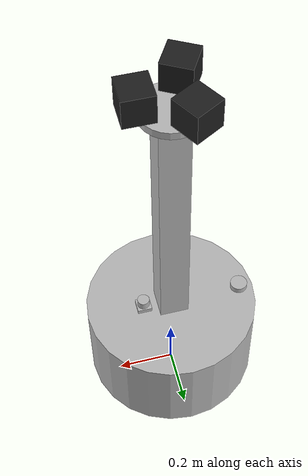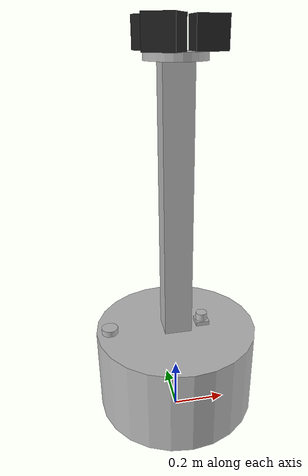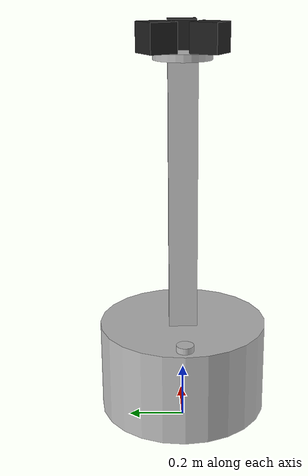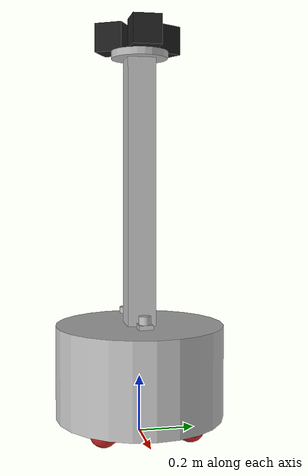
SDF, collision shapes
<?xml version='1.0' ?>
<sdf version='1.4'>
  <model name='Doris'>
	<static>true</static>
	 <link name='cuerpo'>
          <pose> 0 0 0.222 0 0 0 </pose>
            <collision name='cuerpo_collision'>
              <geometry>
                <cylinder>
                  <radius>.30</radius>
                  <length>.33</length>
                </cylinder>
              </geometry>
              <surface>
 		<friction>
 			<ode>
 			<mu>0</mu>
 			<mu2>0</mu2>
 			<slip1>1.0</slip1>
 			<slip2>1.0</slip2>
 			</ode>
 		</friction>
	     </surface>
            </collision>
            <visual name='cuerpo_visual'>
              <geometry>
                <cylinder>
                 <radius>.30</radius>
                 <length>.33</length>
                </cylinder>
              </geometry>
            </visual>
          </link>
	   <link name="left_wheel">
             <pose>0 0.15 0.05 0 1.5707 1.5707</pose>
              <collision name="collision">
               <geometry>
                <cylinder>
                 <radius>.05</radius>
                 <length>.05</length>
                </cylinder>
               </geometry>
              </collision>
              <visual name="visual">
               <geometry>
                <cylinder>
                 <radius>.05</radius>
                  <length>.05</length>
                </cylinder>
               </geometry>
              </visual>
           </link>
           <link name="right_wheel">
        <pose>0 -0.15 0.05 0 1.5707 1.5707</pose>
        <collision name="collisionr">
          <geometry>
            <cylinder>
              <radius>.05</radius>
              <length>.05</length>
            </cylinder>
          </geometry>
        </collision>
        <visual name="visualr">
          <geometry>
            <cylinder>
              <radius>.05</radius>
              <length>.05</length>
            </cylinder>
          </geometry>
        </visual>
      </link>

     <link name="mastil">
          <pose> 0 0 0.85 0 0 0 </pose>
          <collision name='mastil_collision'>
              <geometry>
                <box>
                  <size> 0.1 0.1 0.95</size>
                </box>
              </geometry>
          </collision>
          <visual name="mastil_visual">
              <geometry>
                <box>
                  <size> 0.1 0.1 0.95</size>
                </box>
              </geometry>
           </visual>
          </link>
      <link name='plataforma' >
         <pose> 0 0 1.3375 0 0 0 </pose>
         <collision name= 'plataforma_collision'>
         <geometry>
              <cylinder>
                  <radius> 0.1 </radius>
                  <length> 0.025 </length>
              </cylinder>
          </geometry>
         </collision>
         <visual name= 'plataforma_visual'>
           <geometry>
              <cylinder>
                  <radius> 0.1 </radius>
                  <length> 0.025 </length>
              </cylinder>
          </geometry>
         </visual>
        </link>
        <link name= 'contrapeso'>
	<inertial>
        	<mass>0.040046547</mass>
         </inertial>
         <pose>-0.25 0 0.397 0 0 0</pose>
         <collision name= 'contrapeso_collision'>
         <geometry>
              <cylinder>
                  <radius> 0.03 </radius>
                  <length> 0.025 </length>
              </cylinder>
          </geometry>
         </collision>
         <visual name= 'contrapeso_visual'>
           <geometry>
              <cylinder>
                  <radius> 0.03 </radius>
                  <length> 0.025 </length>
              </cylinder>
          </geometry>
         </visual>
        </link>
        <joint name="cas1j" type="fixed">
          <parent>cuerpo</parent>
           <child>cas1::link</child>
          <pose> -0.2 -0.15 0.05 0 0 0  </pose>
	</joint>
        <joint name="cas2j" type="fixed">
          <parent>cuerpo</parent>
           <child>cas2::link</child>
           <pose>  0.2 -0.15 0.05 0 0 0  </pose>
	</joint>
        <joint name="cas3j" type="fixed">
          <parent>cuerpo</parent>
           <child>cas3::link</child>
          <pose>  -0.2 0.15 0.05 0 0 0  </pose>
	</joint>
        <joint name="cas4j" type="fixed">
          <parent>cuerpo</parent>
           <child>cas4::link</child>
         <pose> 0.2 0.15 0.05 0 0 0  </pose>
	</joint>
        <joint type='revolute' name='contrap_cuerpo'>
            <pose>-0.1 0 0.397 0 0 0</pose>
            <child>contrapeso</child>
           <parent>cuerpo</parent>
            <axis>
             <xyz>0 0 1</xyz>
             <limit>
               <upper>0</upper>
               <lower>0</lower>
             </limit>
           </axis>
        </joint>
        <joint type='revolute' name='mastil_plat'>
            <pose> -0.2 0.2 1.325 0 0 0 </pose>
            <child>plataforma</child>
           <parent>mastil</parent>
            <axis>
             <xyz>0 0 1</xyz>
             <limit>
               <upper>0</upper>
               <lower>0</lower>
             </limit>
           </axis>
        </joint>
        <joint type='revolute' name='plat_cam1'>
            <pose> 0.1 0 1.35 0 0 0 </pose>
            <child>Camara::linkCam1</child>
           <parent>plataforma</parent>
            <axis>
             <xyz>0 0 1</xyz>
             <limit>
               <upper>0</upper>
               <lower>0</lower>
             </limit>
           </axis>
        </joint>
        <joint type='revolute' name='plat_cam2'>
           <pose>-0.1 0.173 1.35 0 0 2.093</pose>
            <child>Camara2::linkCam2</child>
           <parent>plataforma</parent>
            <axis>
             <xyz>0 0 1</xyz>
             <limit>
               <upper>0</upper>
               <lower>0</lower>
             </limit>
           </axis>
        </joint>
        <joint type='revolute' name='plat_cam3'>
           <pose>-0.1 -0.173 1.35 0 0 -2.093</pose>
            <child>Camara3::linkCam3</child>
           <parent>plataforma</parent>
            <axis>
             <xyz>0 0 1</xyz>
             <limit>
               <upper>0</upper>
               <lower>0</lower>
             </limit>
           </axis>
        </joint>
        <joint type="revolute" name="mastil_cuerpo">
           <pose>-0.2 0.2 0.4 0 0 0 </pose>
           <child>mastil</child>
           <parent>cuerpo</parent>
           <axis>
             <xyz>0 0 1</xyz>
             <limit>
               <upper>0</upper>
               <lower>0</lower>
             </limit>
           </axis>
        </joint>
	<joint type="revolute" name="left_axis">
        <pose>0 0 -0.05 0 0 0</pose>
        <child>left_wheel</child>
        <parent>cuerpo</parent>
        <axis>
          <xyz>0 1 0</xyz>
        </axis>
      </joint>
      <joint type="revolute" name="right_axis">
        <pose>0 0 0.05 0 0 0</pose>
        <child>right_wheel</child>
        <parent>cuerpo</parent>
        <axis>
          <xyz>0 1 0</xyz>
        </axis>
      </joint>
    <include>
      <uri>model://Hokuyo_Laser</uri>
      <pose>0.1 0 0.397 0 0 0</pose>
    </include>
    <joint name="hokuyo_joint" type="revolute">
      <pose>0.1 0 0.397 0 0 0</pose>
      <child>hokuyo::link</child>
      <parent>cuerpo</parent>
      <axis>
        <xyz>0 0 1</xyz>
        <limit>
          <upper>0</upper>
          <lower>0</lower>
        </limit>
      </axis>
   </joint>

 <include>
     <uri>model://Camara</uri>
     <pose> 0.1 0 1.4 0 0 0</pose>
  </include>
  <include>
     <uri>model://Camara2</uri>
     <pose> -0.05 0.08660254 1.4 0 0 2.093</pose>
  </include>
  <include>
     <uri>model://Camara3</uri>
     <pose>-0.05 -0.08660254 1.4 0 0 -2.093</pose>
  </include>
  <include>
     <uri>model://Caster_Wheel</uri>
      <name>cas1</name>
     <pose>  -0.15 -0.15 0.05 0 0 0  </pose>
  </include>
   <include>
     <uri>model://Caster_Wheel</uri>
     <name>cas2</name>
     <pose>  0.15 -0.15 0.05 0 0 0  </pose>
  </include>
  <include>
     <uri>model://Caster_Wheel</uri>
     <name>cas3</name>
     <pose>  -0.15 0.15 0.05 0 0 0  </pose>
  </include>
   <include>
     <uri>model://Caster_Wheel</uri>
     <name>cas4</name>
     <pose> 0.15 0.15 0.05 0 0 0  </pose>
  </include>
  <plugin name="differential_drive_controller" filename="libgazebo_ros_diff_drive.so">
  <alwaysOn>true</alwaysOn>
  <updateRate>20</updateRate>
  <leftJoint>right_axis</leftJoint>
  <rightJoint>left_axis</rightJoint>
  <wheelSeparation>0.1</wheelSeparation>
  <wheelDiameter>0.1</wheelDiameter>
  <torque>20</torque>
  <commandTopic>cmd_vel</commandTopic>
  <odometryTopic>odom</odometryTopic>
  <odometryFrame>odom</odometryFrame>
  <robotBaseFrame>base_footprint</robotBaseFrame>
  <legacyMode>true</legacyMode>
  </plugin>
  </model>
</sdf>

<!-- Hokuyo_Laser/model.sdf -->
<sdf version="1.4">
  <model name="hokuyo">
    <pose>0 0 0.035 0 0 0</pose>
    <link name="link">
      <inertial>
        <mass>0.1</mass>
      </inertial>
      <visual name="visual">
        <geometry>
          <mesh>
            <uri>model://Hokuyo_Laser/hokuyo.dae</uri>
          </mesh>
        </geometry>
      </visual>

      <collision name="collision-base">
        <pose>0 0 -0.0145 0 0 0</pose>
        <geometry>
          <box>
            <size>0.05 0.05 0.041</size>
          </box>
        </geometry>
      </collision>

      <collision name="collision-top">
        <pose>0 0 0.0205 0 0 0</pose>
        <geometry>
          <cylinder>
            <radius>0.021</radius>
            <length>0.029</length>
          </cylinder>
        </geometry>
      </collision>
      <sensor name="laser" type="ray">
        <pose>0.01 0 0.0175 0 -0 0</pose>
        <ray>
          <scan>
            <horizontal>
              <samples>640</samples>
              <resolution>1</resolution>
              <min_angle>-2.26889</min_angle>
              <max_angle>2.268899</max_angle>
            </horizontal>
          </scan>
          <range>
            <min>0.08</min>
            <max>10</max>
            <resolution>0.01</resolution>
          </range>
        </ray>
        <plugin name="laser" filename="libgazebo_ros_laser.so" >
           <topicName>scan</topicName>
           <frameName>Doris__hokuyo__link</frameName>
        </plugin>
        <always_on>1</always_on>
        <update_rate>30</update_rate>
        <visualize>true</visualize>
      </sensor>
    </link>
  </model>
</sdf>

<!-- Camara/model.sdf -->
<sdf version="1.4">
  <model name='Camara'>
   <pose>0 0 0 0 0 0</pose>
   <link name='linkCam1'>
     <inertial>
       <mass>0.1</mass>
       <inertia>
         <ixx>1</ixx>
         <ixy>0</ixy>
         <ixz>0</ixz>
         <iyy>1</iyy>
         <iyz>0</iyz>
         <izz>1</izz>
       </inertia>
     </inertial>
     <collision name='collision'>
       <geometry>
         <box>
            <size>0.1 0.1 0.1</size>
         </box>
       </geometry>
       <max_contacts>10</max_contacts>
       <surface>
         <contact>
           <ode/>
         </contact>
         <bounce/>
         <friction>
           <ode/>
         </friction>
       </surface>
     </collision>
     <visual name='visual'>
       <geometry>
         <box>
           <size>0.1 0.1 0.1</size>
         </box>
       </geometry>
       <material>
      <script>
        <uri>file://media/materials/scripts/gazebo.material</uri>
        <name>Gazebo/Black</name>
      </script>
    </material>
     </visual>
     <sensor name="camera" type="camera">
        <camera>
          <horizontal_fov>2.093</horizontal_fov>
          <image>
            <width>604</width>
            <height>679</height>
          </image>
          <clip>
            <near>0.1</near>
            <far>100</far>
          </clip>
        </camera>
        <plugin name="camera_controller" filename="libgazebo_ros_camera.so">
        <alwaysOn>true</alwaysOn>
        <updateRate>10</updateRate>
        <cameraName>Doris/camera1</cameraName>
        <imageTopicName>image_raw</imageTopicName>
        <cameraInfoTopicName>camera_info</cameraInfoTopicName>
        <frameName>Doris__Camara__linkCam1</frameName>
        <hackBaseline>0.07</hackBaseline>
        <Cx>906</Cx>
        <Cy>339.5</Cy>
        <distortionK1>-2.6019586095779829e-001</distortionK1>
        <distortionK2>5.5052401922323718e-002</distortionK2>
        <distortionK3>0.0</distortionK3>
        <distortionT1>0.0</distortionT1>
        <distortionT2>-4.5449850126361765e-003</distortionT2>
      </plugin>
      </sensor>
    </link>

     <self_collide>0</self_collide>
     <kinematic>0</kinematic>
     <gravity>1</gravity>
 </model>
</sdf>

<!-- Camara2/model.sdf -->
<sdf version="1.4">
  <model name='Camara2'>
   <pose>0 0 0 0 0 0</pose>
   <link name='linkCam2'>
     <inertial>
       <mass>0.1</mass>
       <inertia>
         <ixx>1</ixx>
         <ixy>0</ixy>
         <ixz>0</ixz>
         <iyy>1</iyy>
         <iyz>0</iyz>
         <izz>1</izz>
       </inertia>
     </inertial>
     <collision name='collision'>
       <geometry>
         <box>
            <size>0.1 0.1 0.1</size>
         </box>
       </geometry>
       <max_contacts>10</max_contacts>
       <surface>
         <contact>
           <ode/>
         </contact>
         <bounce/>
         <friction>
           <ode/>
         </friction>
       </surface>
     </collision>
     <visual name='visual'>
       <geometry>
         <box>
           <size>0.1 0.1 0.1</size>
         </box>
       </geometry>
       <material>
      <script>
        <uri>file://media/materials/scripts/gazebo.material</uri>
        <name>Gazebo/Black</name>
      </script>
    </material>
     </visual>
     <sensor name="camera" type="camera">
        <camera>
          <horizontal_fov>2.093</horizontal_fov>
          <image>
            <width>604</width>
            <height>679</height>
          </image>
          <clip>
            <near>0.1</near>
            <far>100</far>
          </clip>
          <lens>
            <type>stereographic</type>
            <scale_to_hfov>true</scale_to_hfov>
            <cutoff_angle>1.5707</cutoff_angle>
            <env_texture_size>512</env_texture_size>
          </lens>
        </camera>
        <plugin name="camera_controller" filename="libgazebo_ros_camera.so">
        <alwaysOn>true</alwaysOn>
        <updateRate>10</updateRate>
        <cameraName>Doris/camera2</cameraName>
        <imageTopicName>image_raw</imageTopicName>
        <cameraInfoTopicName>camera_info</cameraInfoTopicName>
        <frameName>Doris__Camara2__linkCam2</frameName>
        <hackBaseline>0.07</hackBaseline>
        <distortionK1>-2.6019586095779829e-001</distortionK1>
        <distortionK2>5.5052401922323718e-002</distortionK2>
        <distortionK3>0.0</distortionK3>
        <distortionT1>0.0</distortionT1>
        <distortionT2>-4.5449850126361765e-003</distortionT2>

       </plugin>
      </sensor>
    </link>
     <self_collide>0</self_collide>
     <kinematic>0</kinematic>
     <gravity>1</gravity>
 </model>
</sdf>

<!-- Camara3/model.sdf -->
<sdf version="1.4">
  <model name='Camara3'>
   <pose>0 0 0 0 0 0</pose>
   <link name='linkCam3'>
     <inertial>
       <mass>0.1</mass>
       <inertia>
         <ixx>1</ixx>
         <ixy>0</ixy>
         <ixz>0</ixz>
         <iyy>1</iyy>
         <iyz>0</iyz>
         <izz>1</izz>
       </inertia>
     </inertial>
     <collision name='collision'>
       <geometry>
         <box>
            <size>0.1 0.1 0.1</size>
         </box>
       </geometry>
       <max_contacts>10</max_contacts>
       <surface>
         <contact>
           <ode/>
         </contact>
         <bounce/>
         <friction>
           <ode/>
         </friction>
       </surface>
     </collision>
     <visual name='visual'>
       <geometry>
         <box>
           <size>0.1 0.1 0.1</size>
         </box>
       </geometry>
       <material>
      <script>
        <uri>file://media/materials/scripts/gazebo.material</uri>
        <name>Gazebo/Black</name>
      </script>
    </material>
     </visual>
     <sensor name="camera" type="camera">
        <camera>
          <horizontal_fov>2.093</horizontal_fov>
          <image>
            <width>604</width>
            <height>679</height>
          </image>
          <clip>
            <near>0.1</near>
            <far>100</far>
          </clip>
          <lens>
            <type>stereographic</type>
            <scale_to_hfov>true</scale_to_hfov>
            <cutoff_angle>1.5707</cutoff_angle>
            <env_texture_size>512</env_texture_size>
          </lens>
        </camera>
        <plugin name="camera_controller" filename="libgazebo_ros_camera.so">
        <alwaysOn>true</alwaysOn>
        <updateRate>10</updateRate>
        <cameraName>Doris/camera3</cameraName>
        <imageTopicName>image_raw</imageTopicName>
        <cameraInfoTopicName>camera_info</cameraInfoTopicName>
        <frameName>Doris__Camara3__linkCam3</frameName>
        <hackBaseline>0.07</hackBaseline>
        <distortionK1>-2.6019586095779829e-001</distortionK1>
        <distortionK2>5.5052401922323718e-002</distortionK2>
        <distortionK3>0.0</distortionK3>
        <distortionT1>0.0</distortionT1>
        <distortionT2>-4.5449850126361765e-003</distortionT2>
      </plugin>
      </sensor>
    </link>
     <self_collide>0</self_collide>
     <kinematic>0</kinematic>
     <gravity>1</gravity>
 </model>
</sdf>

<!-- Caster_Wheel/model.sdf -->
<sdf version='1.4'>
  <model name='Caster_Wheel'>
<link name="link">
    <collision name ="caster_coll">
    <pose> 0 0 0 0 0 0</pose>
    <geometry>
      <sphere>
        <radius>0.05</radius>
     </sphere>
    </geometry>
    <surface>
          <friction>
            <ode>
              <mu>0</mu>
              <mu2>0</mu2>
              <slip1>1.0</slip1>
              <slip2>1.0</slip2>
            </ode>
          </friction>
        </surface>
  </collision>
  <visual name ="caster_visual">
    <pose> 0 0 0 0 0 0</pose>
    <geometry>
      <sphere>
        <radius>0.05</radius>
      </sphere>
    </geometry>
     <material>
      <script>
        <uri>file://media/materials/scripts/gazebo.material</uri>
        <name>Gazebo/Red</name>
      </script>
    </material>
  </visual>
  <inertial>
    <mass>0.5</mass>
  </inertial>
</link>
</model>
</sdf>
